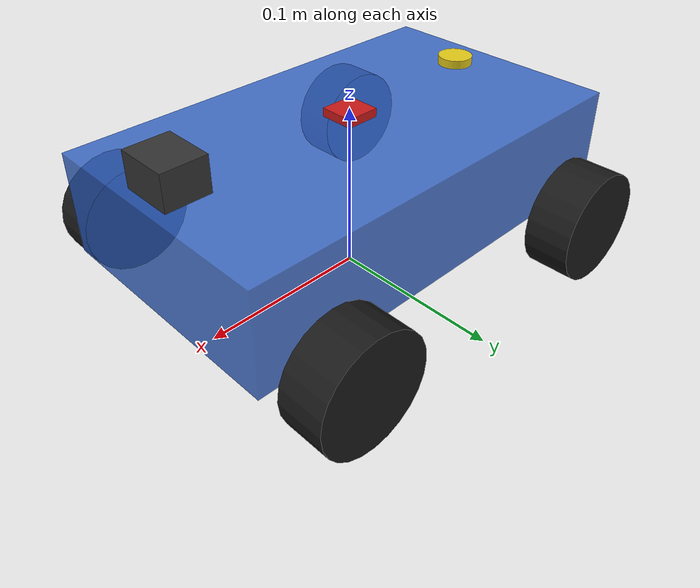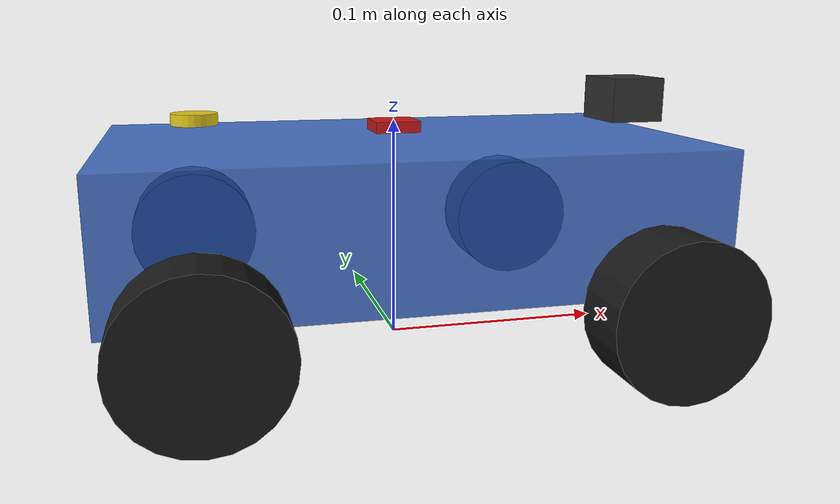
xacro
<?xml version="1.0"?>
<robot name="rover"
  xmlns:xacro="http://www.ros.org/wiki/xacro">

  <!-- ===== KİTE GÖRE PARAMETRELER (ANIM 4WD) ===== -->
  <!-- Şasi: 25.5 x 15 cm akrilik, çift kat + motorlar arası -->
  <xacro:property name="chassis_length" value="0.255"/>
  <xacro:property name="chassis_width" value="0.15"/>
  <xacro:property name="chassis_height" value="0.06"/>
  <xacro:property name="chassis_mass" value="0.8"/>

  <!-- Teker: 6.5 cm çap, 2.7 cm genişlik -->
  <xacro:property name="wheel_radius" value="0.0325"/>
  <xacro:property name="wheel_width" value="0.027"/>
  <xacro:property name="wheel_mass" value="0.03"/>

  <!-- Teker yerleşimi (şasi merkezinden) -->
  <xacro:property name="wheel_offset_x" value="0.09"/>
  <xacro:property name="wheel_offset_y" value="0.095"/>

  <!-- ===== MATERYALLER ===== -->
  <material name="acrylic_blue">
    <color rgba="0.2 0.4 0.8 0.85"/>
  </material>
  <material name="tire_black">
    <color rgba="0.1 0.1 0.1 1.0"/>
  </material>

  <!-- ===== INERTIA MACRO'LARI ===== -->
  <xacro:macro name="box_inertia" params="m x y z">
    <inertial>
      <mass value="${m}"/>
      <inertia ixx="${(1/12) * m * (y*y + z*z)}" ixy="0" ixz="0" iyy="${(1/12) * m * (x*x + z*z)}" iyz="0" izz="${(1/12) * m * (x*x + y*y)}"/>
    </inertial>
  </xacro:macro>

  <xacro:macro name="cylinder_inertia" params="m r h">
    <inertial>
      <mass value="${m}"/>
      <inertia ixx="${(1/12) * m * (3*r*r + h*h)}" ixy="0" ixz="0" iyy="${(1/2) * m * r*r}" iyz="0" izz="${(1/12) * m * (3*r*r + h*h)}"/>
    </inertial>
  </xacro:macro>

  <!-- ===== FRAME'LER ===== -->
  <link name="base_footprint"/>

  <link name="base_link">
    <visual>
      <geometry>
        <box size="${chassis_length} ${chassis_width} ${chassis_height}"/>
      </geometry>
      <material name="acrylic_blue"/>
    </visual>
    <collision>
      <geometry>
        <box size="${chassis_length} ${chassis_width} ${chassis_height}"/>
      </geometry>
    </collision>
    <xacro:box_inertia m="${chassis_mass}" x="${chassis_length}" y="${chassis_width}" z="${chassis_height}"/>
  </link>

  <joint name="base_footprint_to_base_link" type="fixed">
    <parent link="base_footprint"/>
    <child link="base_link"/>
    <origin xyz="0 0 ${wheel_radius + chassis_height/2}" rpy="0 0 0"/>
  </joint>

  <!-- ===== TEKER MACRO ===== -->
  <xacro:macro name="wheel" params="prefix x_offset y_offset">
    <link name="${prefix}_wheel">
      <visual>
        <origin xyz="0 0 0" rpy="${pi/2} 0 0"/>
        <geometry>
          <cylinder radius="${wheel_radius}" length="${wheel_width}"/>
        </geometry>
        <material name="tire_black"/>
      </visual>
      <collision>
        <origin xyz="0 0 0" rpy="${pi/2} 0 0"/>
        <geometry>
          <cylinder radius="${wheel_radius}" length="${wheel_width}"/>
        </geometry>
      </collision>
      <xacro:cylinder_inertia m="${wheel_mass}" r="${wheel_radius}" h="${wheel_width}"/>
    </link>

    <joint name="${prefix}_wheel_joint" type="continuous">
      <parent link="base_link"/>
      <child link="${prefix}_wheel"/>
      <origin xyz="${x_offset} ${y_offset} ${-chassis_height/2}" rpy="0 0 0"/>
      <axis xyz="0 1 0"/>
    </joint>
  </xacro:macro>

  <xacro:wheel prefix="front_left" x_offset="${ wheel_offset_x}" y_offset="${ wheel_offset_y}"/>
  <xacro:wheel prefix="front_right" x_offset="${ wheel_offset_x}" y_offset="${-wheel_offset_y}"/>
  <xacro:wheel prefix="rear_left" x_offset="${-wheel_offset_x}" y_offset="${ wheel_offset_y}"/>
  <xacro:wheel prefix="rear_right" x_offset="${-wheel_offset_x}" y_offset="${-wheel_offset_y}"/>
  <!-- ===== ros2_control HARDWARE TANIMI ===== -->
  <ros2_control name="GazeboSystem" type="system">
    <hardware>
      <plugin>gz_ros2_control/GazeboSimSystem</plugin>
    </hardware>

    <joint name="front_left_wheel_joint">
      <command_interface name="velocity">
        <param name="min">-10.0</param>
        <param name="max"> 10.0</param>
      </command_interface>
      <state_interface name="position"/>
      <state_interface name="velocity"/>
    </joint>

    <joint name="front_right_wheel_joint">
      <command_interface name="velocity">
        <param name="min">-10.0</param>
        <param name="max"> 10.0</param>
      </command_interface>
      <state_interface name="position"/>
      <state_interface name="velocity"/>
    </joint>

    <joint name="rear_left_wheel_joint">
      <command_interface name="velocity">
        <param name="min">-10.0</param>
        <param name="max"> 10.0</param>
      </command_interface>
      <state_interface name="position"/>
      <state_interface name="velocity"/>
    </joint>

    <joint name="rear_right_wheel_joint">
      <command_interface name="velocity">
        <param name="min">-10.0</param>
        <param name="max"> 10.0</param>
      </command_interface>
      <state_interface name="position"/>
      <state_interface name="velocity"/>
    </joint>
  </ros2_control>

  <!-- ===== GAZEBO PLUGIN (controller manager Gazebo içinde çalışsın) ===== -->
  <gazebo>
    <plugin filename="gz_ros2_control-system" name="gz_ros2_control::GazeboSimROS2ControlPlugin">
      <parameters>$(find rover_control)/config/controllers.yaml</parameters>
    </plugin>
  </gazebo>
  <!-- ===== IMU LINK ===== -->
  <link name="imu_link">
    <inertial>
      <mass value="0.001"/>
      <inertia ixx="1e-9" ixy="0" ixz="0" iyy="1e-9" iyz="0" izz="1e-9"/>
    </inertial>
    <visual>
      <geometry>
        <box size="0.02 0.02 0.005"/>
      </geometry>
      <material name="imu_red">
        <color rgba="0.8 0.1 0.1 1.0"/>
      </material>
    </visual>
  </link>

  <joint name="imu_joint" type="fixed">
    <parent link="base_link"/>
    <child link="imu_link"/>
    <origin xyz="0 0 ${chassis_height/2 + 0.005}" rpy="0 0 0"/>
  </joint>

  <!-- ===== GAZEBO IMU SENSÖRÜ ===== -->
  <gazebo reference="imu_link">
    <sensor name="imu_sensor" type="imu">
      <always_on>true</always_on>
      <update_rate>100</update_rate>
      <topic>imu</topic>
      <gz_frame_id>imu_link</gz_frame_id>
      <imu>
        <angular_velocity>
          <x>
            <noise type="gaussian">
              <mean>0.0</mean>
              <stddev>2e-4</stddev>
            </noise>
          </x>
          <y>
            <noise type="gaussian">
              <mean>0.0</mean>
              <stddev>2e-4</stddev>
            </noise>
          </y>
          <z>
            <noise type="gaussian">
              <mean>0.0</mean>
              <stddev>2e-4</stddev>
            </noise>
          </z>
        </angular_velocity>
        <linear_acceleration>
          <x>
            <noise type="gaussian">
              <mean>0.0</mean>
              <stddev>1.7e-2</stddev>
            </noise>
          </x>
          <y>
            <noise type="gaussian">
              <mean>0.0</mean>
              <stddev>1.7e-2</stddev>
            </noise>
          </y>
          <z>
            <noise type="gaussian">
              <mean>0.0</mean>
              <stddev>1.7e-2</stddev>
            </noise>
          </z>
        </linear_acceleration>
      </imu>
    </sensor>
  </gazebo>

  <!-- ===== KAMERA LINK (gövde frame'i) ===== -->
  <link name="camera_link">
    <inertial>
      <mass value="0.001"/>
      <inertia ixx="1e-9" ixy="0" ixz="0" iyy="1e-9" iyz="0" izz="1e-9"/>
    </inertial>
    <visual>
      <geometry>
        <box size="0.025 0.03 0.02"/>
      </geometry>
      <material name="camera_grey">
        <color rgba="0.2 0.2 0.2 1.0"/>
      </material>
    </visual>
  </link>

  <joint name="camera_joint" type="fixed">
    <parent link="base_link"/>
    <child link="camera_link"/>
    <!-- Şasinin önüne, ortaya, hafif yukarı -->
    <origin xyz="${chassis_length/2 - 0.015} 0 ${chassis_height/2 + 0.015}" rpy="0 0 0"/>
  </joint>

  <!-- ===== KAMERA OPTİK FRAME'İ ===== -->
  <!-- ROS gövde konvansiyonu (X ileri, Y sol, Z yukarı) ile
       optik konvansiyon (X sağ, Y aşağı, Z ileri) arasındaki dönüşüm -->
  <link name="camera_link_optical"/>
  <joint name="camera_optical_joint" type="fixed">
    <parent link="camera_link"/>
    <child link="camera_link_optical"/>
    <origin xyz="0 0 0" rpy="${-pi/2} 0 ${-pi/2}"/>
  </joint>

  <!-- ===== GAZEBO KAMERA SENSÖRÜ ===== -->
  <gazebo reference="camera_link">
    <sensor name="rgb_camera" type="camera">
      <always_on>true</always_on>
      <update_rate>30</update_rate>
      <visualize>true</visualize>
      <topic>camera/image_raw</topic>
      <gz_frame_id>camera_link_optical</gz_frame_id>
      <camera>
        <horizontal_fov>1.396</horizontal_fov>        <!-- ~80 derece, geniş FPV açısı -->
        <image>
          <width>640</width>
          <height>480</height>
          <format>R8G8B8</format>
        </image>
        <clip>
          <near>0.05</near>
          <far>100</far>
        </clip>
      </camera>
    </sensor>
  </gazebo>
  <!-- ===== GPS LINK ===== -->
  <link name="gps_link">
    <inertial>
      <mass value="0.001"/>
      <inertia ixx="1e-9" ixy="0" ixz="0" iyy="1e-9" iyz="0" izz="1e-9"/>
    </inertial>
    <visual>
      <geometry>
        <cylinder radius="0.01" length="0.005"/>
      </geometry>
      <material name="gps_yellow">
        <color rgba="0.9 0.8 0.1 1.0"/>
      </material>
    </visual>
  </link>

  <joint name="gps_joint" type="fixed">
    <parent link="base_link"/>
    <child link="gps_link"/>
    <!-- Şasinin üzerinde, arka kısma yakın -->
    <origin xyz="${-chassis_length/2 + 0.04} 0 ${chassis_height/2 + 0.01}" rpy="0 0 0"/>
  </joint>

  <!-- ===== GAZEBO NAVSAT SENSÖRÜ ===== -->
  <gazebo reference="gps_link">
    <sensor name="navsat_sensor" type="navsat">
      <always_on>true</always_on>
      <update_rate>10</update_rate>
      <topic>gps</topic>
      <gz_frame_id>gps_link</gz_frame_id>
      <navsat>
        <position_sensing>
          <horizontal>
            <noise type="gaussian">
              <mean>0.0</mean>
              <stddev>0.00001</stddev>              <!-- ≈1m yatay noise (1e-5 derece) -->
            </noise>
          </horizontal>
          <vertical>
            <noise type="gaussian">
              <mean>0.0</mean>
              <stddev>1.5</stddev>              <!-- 1.5m dikey, gerçek GPS tipik -->
            </noise>
          </vertical>
        </position_sensing>
      </navsat>
    </sensor>
  </gazebo>
  <!-- ===== WHEEL FRICTION (skid-steer için ayarlı) ===== -->
  <xacro:macro name="wheel_friction" params="prefix">
    <gazebo reference="${prefix}_wheel">
      <mu1>0.7</mu1>      <!-- yuvarlanma yönü: tutuş normal -->
      <mu2>0.25</mu2>      <!-- yan yön: düşük, skid-steer kaymasına izin ver -->
      <kp>1e7</kp>
      <kd>1.0</kd>
      <fdir1>1 0 0</fdir1>      <!-- birinci sürtünme ekseni: X (yuvarlanma) -->
      <minDepth>0.001</minDepth>
    </gazebo>
  </xacro:macro>

  <xacro:wheel_friction prefix="front_left"/>
  <xacro:wheel_friction prefix="front_right"/>
  <xacro:wheel_friction prefix="rear_left"/>
  <xacro:wheel_friction prefix="rear_right"/>
  <!-- Gazebo ground truth odometry publisher (drift-free) -->
  <gazebo>
    <plugin filename="gz-sim-odometry-publisher-system" name="gz::sim::systems::OdometryPublisher">
      <odom_frame>odom</odom_frame>
      <robot_base_frame>base_link</robot_base_frame>
      <odom_publish_frequency>50</odom_publish_frequency>
      <dimensions>3</dimensions>
    </plugin>
  </gazebo>
</robot>
